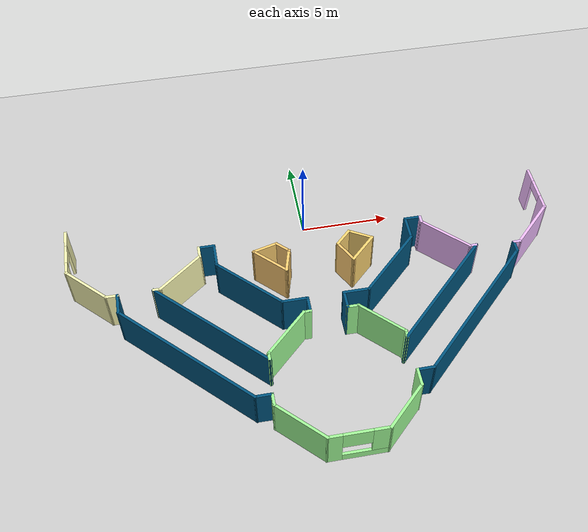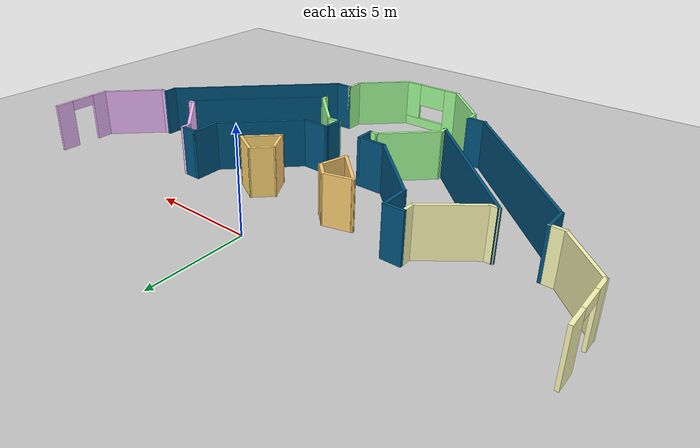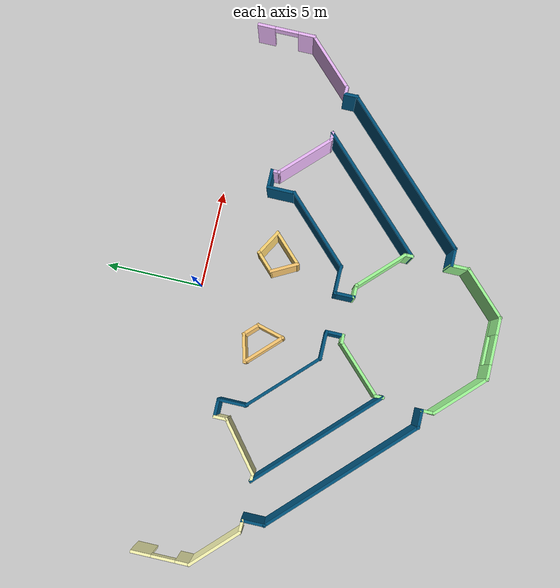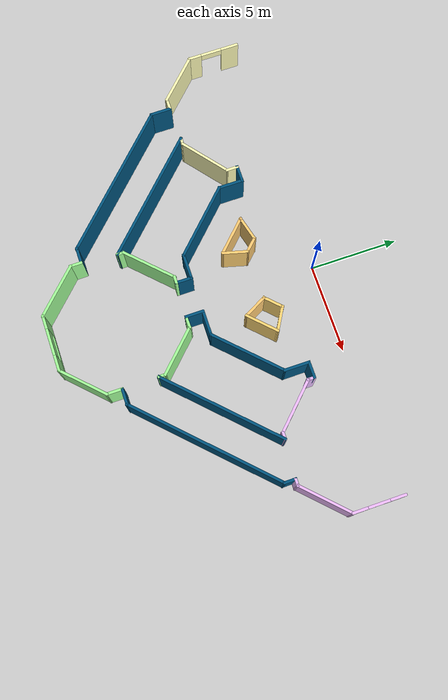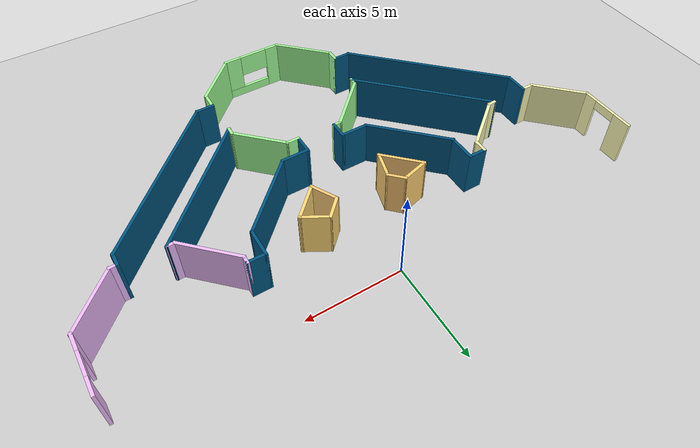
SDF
<sdf version="1.6">
 <world name="default">
  <model name="ground_plane">
   <static>1</static>
   <link name="link">
    <collision name="collision">
     <geometry><plane><normal>0 0 1</normal><size>100 100</size></plane></geometry>
     <surface>
      <contact><collide_bitmask>65535</collide_bitmask></contact>
      <friction><ode><mu>100</mu><mu2>50</mu2></ode></friction>
     </surface>
    </collision>
    <visual name="visual">
     <cast_shadows>0</cast_shadows>
     <geometry><plane><normal>0 0 1</normal><size>100 100</size></plane></geometry>
     <material>
      <script><uri>file://media/materials/scripts/gazebo.material</uri><name>Gazebo/Grey</name></script>
     </material>
    </visual>
   </link>
  </model>
  <model name="building">
   <pose>-0.001846 -1.5065 0 0 -0 0</pose>
   <link name="Wall_10">
    <collision name="Wall_10_Collision">
     <geometry><box><size>1.5 0.15 2.5</size></box></geometry>
     <pose>0 0 1.25 0 -0 0</pose>
    </collision>
    <visual name="Wall_10_Visual">
     <pose>0 0 1.25 0 -0 0</pose>
     <geometry><box><size>1.5 0.15 2.5</size></box></geometry>
     <material>
      <script><uri>file://media/materials/scripts/gazebo.material</uri><name>Gazebo/Grey</name></script>
      <ambient>1 0.819608 0.45098 1</ambient>
     </material>
     <meta><layer>0</layer></meta>
    </visual>
    <pose>-2.66214 -1.49592 0 0 -0 0.261799</pose>
   </link>
   <link name="Wall_11">
    <collision name="Wall_11_Collision">
     <geometry><box><size>1 0.15 2.5</size></box></geometry>
     <pose>0 0 1.25 0 -0 0</pose>
    </collision>
    <visual name="Wall_11_Visual">
     <pose>0 0 1.25 0 -0 0</pose>
     <geometry><box><size>1 0.15 2.5</size></box></geometry>
     <material>
      <script><uri>file://media/materials/scripts/gazebo.material</uri><name>Gazebo/Grey</name></script>
      <ambient>1 0.8 0.454902 1</ambient>
     </material>
     <meta><layer>0</layer></meta>
    </visual>
    <pose>-1.70962 -1.62174 0 0 0 -0.785398</pose>
   </link>
   <link name="Wall_12">
    <collision name="Wall_12_Collision">
     <geometry><box><size>1.5 0.15 2.5</size></box></geometry>
     <pose>0 0 1.25 0 -0 0</pose>
    </collision>
    <visual name="Wall_12_Visual">
     <pose>0 0 1.25 0 -0 0</pose>
     <geometry><box><size>1.5 0.15 2.5</size></box></geometry>
     <material>
      <script><uri>file://media/materials/scripts/gazebo.material</uri><name>Gazebo/Grey</name></script>
      <ambient>1 0.819608 0.45098 1</ambient>
     </material>
     <meta><layer>0</layer></meta>
    </visual>
    <pose>-1.5838 -2.57426 0 0 0 -1.8326</pose>
   </link>
   <link name="Wall_13">
    <collision name="Wall_13_Collision">
     <geometry><box><size>2.35 0.15 2.5</size></box></geometry>
     <pose>0 0 1.25 0 -0 0</pose>
    </collision>
    <visual name="Wall_13_Visual">
     <pose>0 0 1.25 0 -0 0</pose>
     <geometry><box><size>2.35 0.15 2.5</size></box></geometry>
     <material>
      <script><uri>file://media/materials/scripts/gazebo.material</uri><name>Gazebo/Grey</name></script>
      <ambient>1 0.8 0.454902 1</ambient>
     </material>
     <meta><layer>0</layer></meta>
    </visual>
    <pose>-2.53633 -2.44844 0 0 -0 2.35619</pose>
   </link>
   <link name="Wall_15">
    <collision name="Wall_15_Collision">
     <geometry><box><size>1.25 0.15 2.5</size></box></geometry>
     <pose>0 0 1.25 0 -0 0</pose>
    </collision>
    <visual name="Wall_15_Visual">
     <pose>0 0 1.25 0 -0 0</pose>
     <geometry><box><size>1.25 0.15 2.5</size></box></geometry>
     <material>
      <script><uri>file://media/materials/scripts/gazebo.material</uri><name>Gazebo/Grey</name></script>
      <ambient>1 0.847059 0.458824 1</ambient>
     </material>
     <meta><layer>0</layer></meta>
    </visual>
    <pose>1.70963 -1.54407 0 0 -0 0.785398</pose>
   </link>
   <link name="Wall_16">
    <collision name="Wall_16_Collision">
     <geometry><box><size>1.5 0.15 2.5</size></box></geometry>
     <pose>0 0 1.25 0 -0 0</pose>
    </collision>
    <visual name="Wall_16_Visual">
     <pose>0 0 1.25 0 -0 0</pose>
     <geometry><box><size>1.5 0.15 2.5</size></box></geometry>
     <material>
      <script><uri>file://media/materials/scripts/gazebo.material</uri><name>Gazebo/Grey</name></script>
      <ambient>1 0.847059 0.458824 1</ambient>
     </material>
     <meta><layer>0</layer></meta>
    </visual>
    <pose>2.68311 -1.49266 0 0 0 -0.523599</pose>
   </link>
   <link name="Wall_17">
    <collision name="Wall_17_Collision">
     <geometry><box><size>2 0.15 2.5</size></box></geometry>
     <pose>0 0 1.25 0 -0 0</pose>
    </collision>
    <visual name="Wall_17_Visual">
     <pose>0 0 1.25 0 -0 0</pose>
     <geometry><box><size>2 0.15 2.5</size></box></geometry>
     <material>
      <script><uri>file://media/materials/scripts/gazebo.material</uri><name>Gazebo/Grey</name></script>
      <ambient>1 0.847059 0.458824 1</ambient>
     </material>
     <meta><layer>0</layer></meta>
    </visual>
    <pose>2.6136 -2.48423 0 0 0 -2.35619</pose>
   </link>
   <link name="Wall_18">
    <collision name="Wall_18_Collision">
     <geometry><box><size>1.51415 0.15 2.5</size></box></geometry>
     <pose>0 0 1.25 0 -0 0</pose>
    </collision>
    <visual name="Wall_18_Visual">
     <pose>0 0 1.25 0 -0 0</pose>
     <geometry><box><size>1.51415 0.15 2.5</size></box></geometry>
     <material>
      <script><uri>file://media/materials/scripts/gazebo.material</uri><name>Gazebo/Grey</name></script>
      <ambient>1 0.8 0.454902 1</ambient>
     </material>
     <meta><layer>0</layer></meta>
    </visual>
    <pose>1.64013 -2.53564 0 0 -0 2.05814</pose>
   </link>
   <link name="Wall_20">
    <collision name="Wall_20_Collision">
     <geometry><box><size>1.5 0.15 2.5</size></box></geometry>
     <pose>0 0 1.25 0 -0 0</pose>
    </collision>
    <visual name="Wall_20_Visual">
     <pose>0 0 1.25 0 -0 0</pose>
     <geometry><box><size>1.5 0.15 2.5</size></box></geometry>
     <material>
      <script><uri>file://media/materials/scripts/gazebo.material</uri><name>Gazebo/Grey</name></script>
      <ambient>0 0.333333 0.498039 1</ambient>
     </material>
     <meta><layer>0</layer></meta>
    </visual>
    <pose>-5.40602 -1.52769 0 0 0 -1.5708</pose>
   </link>
   <link name="Wall_21">
    <collision name="Wall_21_Collision">
     <geometry><box><size>4.5 0.15 2.5</size></box></geometry>
     <pose>0 0 1.25 0 -0 0</pose>
    </collision>
    <visual name="Wall_21_Visual">
     <pose>0 0 1.25 0 -0 0</pose>
     <geometry><box><size>4.5 0.15 2.5</size></box></geometry>
     <material>
      <script><uri>file://media/materials/scripts/gazebo.material</uri><name>Gazebo/Grey</name></script>
      <ambient>0 0.333333 0.498039 1</ambient>
     </material>
     <meta><layer>0</layer></meta>
    </visual>
    <pose>-3.86807 -3.74065 0 0 0 -0.785398</pose>
   </link>
   <link name="Wall_22">
    <collision name="Wall_22_Collision">
     <geometry><box><size>1.5 0.15 2.5</size></box></geometry>
     <pose>0 0 1.25 0 -0 0</pose>
    </collision>
    <visual name="Wall_22_Visual">
     <pose>0 0 1.25 0 -0 0</pose>
     <geometry><box><size>1.5 0.15 2.5</size></box></geometry>
     <material>
      <script><uri>file://media/materials/scripts/gazebo.material</uri><name>Gazebo/Grey</name></script>
      <ambient>0 0.333333 0.498039 1</ambient>
     </material>
     <meta><layer>0</layer></meta>
    </visual>
    <pose>-1.65511 -5.2786 0 0 -0 0</pose>
   </link>
   <link name="Wall_23">
    <collision name="Wall_23_Collision">
     <geometry><box><size>1 0.15 2.5</size></box></geometry>
     <pose>0 0 1.25 0 -0 0</pose>
    </collision>
    <visual name="Wall_23_Visual">
     <pose>0 0 1.25 0 -0 0</pose>
     <geometry><box><size>1 0.15 2.5</size></box></geometry>
     <material>
      <script><uri>file://media/materials/scripts/gazebo.material</uri><name>Gazebo/Grey</name></script>
      <ambient>0 0.333333 0.498039 1</ambient>
     </material>
     <meta><layer>0</layer></meta>
    </visual>
    <pose>-0.980109 -5.7036 0 0 0 -1.5708</pose>
   </link>
   <link name="Wall_24">
    <collision name="Wall_24_Collision">
     <geometry><box><size>0.5 0.15 2.5</size></box></geometry>
     <pose>0 0 1.25 0 -0 0</pose>
    </collision>
    <visual name="Wall_24_Visual">
     <pose>0 0 1.25 0 -0 0</pose>
     <geometry><box><size>0.5 0.15 2.5</size></box></geometry>
     <material>
      <script><uri>file://media/materials/scripts/gazebo.material</uri><name>Gazebo/Grey</name></script>
      <ambient>0.639216 1 0.6 1</ambient>
     </material>
     <meta><layer>0</layer></meta>
    </visual>
    <pose>-1.15511 -6.1286 0 0 -0 3.14159</pose>
   </link>
   <link name="Wall_26">
    <collision name="Wall_26_Collision">
     <geometry><box><size>1 0.15 2.5</size></box></geometry>
     <pose>0 0 1.25 0 -0 0</pose>
    </collision>
    <visual name="Wall_26_Visual">
     <pose>0 0 1.25 0 -0 0</pose>
     <geometry><box><size>1 0.15 2.5</size></box></geometry>
     <material>
      <script><uri>file://media/materials/scripts/gazebo.material</uri><name>Gazebo/Grey</name></script>
      <ambient>0 0.333333 0.498039 1</ambient>
     </material>
     <meta><layer>0</layer></meta>
    </visual>
    <pose>-5.83102 -0.852688 0 0 -0 3.14159</pose>
   </link>
   <link name="Wall_27">
    <collision name="Wall_27_Collision">
     <geometry><box><size>0.75 0.15 2.5</size></box></geometry>
     <pose>0 0 1.25 0 -0 0</pose>
    </collision>
    <visual name="Wall_27_Visual">
     <pose>0 0 1.25 0 -0 0</pose>
     <geometry><box><size>0.75 0.15 2.5</size></box></geometry>
     <material>
      <script><uri>file://media/materials/scripts/gazebo.material</uri><name>Gazebo/Grey</name></script>
      <ambient>1 0.992157 0.717647 1</ambient>
     </material>
     <meta><layer>0</layer></meta>
    </visual>
    <pose>-6.25602 -1.15269 0 0 0 -1.5708</pose>
   </link>
   <link name="Wall_29">
    <collision name="Wall_29_Collision">
     <geometry><box><size>1.5 0.15 2.5</size></box></geometry>
     <pose>0 0 1.25 0 -0 0</pose>
    </collision>
    <visual name="Wall_29_Visual">
     <pose>0 0 1.25 0 -0 0</pose>
     <geometry><box><size>1.5 0.15 2.5</size></box></geometry>
     <material>
      <script><uri>file://media/materials/scripts/gazebo.material</uri><name>Gazebo/Grey</name></script>
      <ambient>0 0.333333 0.498039 1</ambient>
     </material>
     <meta><layer>0</layer></meta>
    </visual>
    <pose>1.65302 -5.27063 0 0 -0 0</pose>
   </link>
   <link name="Wall_30">
    <collision name="Wall_30_Collision">
     <geometry><box><size>4.5 0.15 2.5</size></box></geometry>
     <pose>0 0 1.25 0 -0 0</pose>
    </collision>
    <visual name="Wall_30_Visual">
     <pose>0 0 1.25 0 -0 0</pose>
     <geometry><box><size>4.5 0.15 2.5</size></box></geometry>
     <material>
      <script><uri>file://media/materials/scripts/gazebo.material</uri><name>Gazebo/Grey</name></script>
      <ambient>0 0.333333 0.498039 1</ambient>
     </material>
     <meta><layer>0</layer></meta>
    </visual>
    <pose>3.86598 -3.73268 0 0 -0 0.785398</pose>
   </link>
   <link name="Wall_31">
    <collision name="Wall_31_Collision">
     <geometry><box><size>1.5 0.15 2.5</size></box></geometry>
     <pose>0 0 1.25 0 -0 0</pose>
    </collision>
    <visual name="Wall_31_Visual">
     <pose>0 0 1.25 0 -0 0</pose>
     <geometry><box><size>1.5 0.15 2.5</size></box></geometry>
     <material>
      <script><uri>file://media/materials/scripts/gazebo.material</uri><name>Gazebo/Grey</name></script>
      <ambient>0 0.333333 0.498039 1</ambient>
     </material>
     <meta><layer>0</layer></meta>
    </visual>
    <pose>5.40394 -1.51972 0 0 -0 1.5708</pose>
   </link>
   <link name="Wall_32">
    <collision name="Wall_32_Collision">
     <geometry><box><size>1 0.15 2.5</size></box></geometry>
     <pose>0 0 1.25 0 -0 0</pose>
    </collision>
    <visual name="Wall_32_Visual">
     <pose>0 0 1.25 0 -0 0</pose>
     <geometry><box><size>1 0.15 2.5</size></box></geometry>
     <material>
      <script><uri>file://media/materials/scripts/gazebo.material</uri><name>Gazebo/Grey</name></script>
      <ambient>0 0.333333 0.498039 1</ambient>
     </material>
     <meta><layer>0</layer></meta>
    </visual>
    <pose>5.82894 -0.84472 0 0 -0 0</pose>
   </link>
   <link name="Wall_33">
    <collision name="Wall_33_Collision">
     <geometry><box><size>0.5 0.15 2.5</size></box></geometry>
     <pose>0 0 1.25 0 -0 0</pose>
    </collision>
    <visual name="Wall_33_Visual">
     <pose>0 0 1.25 0 -0 0</pose>
     <geometry><box><size>0.5 0.15 2.5</size></box></geometry>
     <material>
      <script><uri>file://media/materials/scripts/gazebo.material</uri><name>Gazebo/Grey</name></script>
      <ambient>0.913725 0.737255 1 1</ambient>
     </material>
     <meta><layer>0</layer></meta>
    </visual>
    <pose>6.25394 -1.01972 0 0 0 -1.5708</pose>
   </link>
   <link name="Wall_64">
    <collision name="Wall_64_Collision">
     <geometry><box><size>3.25 0.15 2.5</size></box></geometry>
     <pose>0 0 1.25 0 -0 0</pose>
    </collision>
    <visual name="Wall_64_Visual">
     <pose>0 0 1.25 0 -0 0</pose>
     <geometry><box><size>3.25 0.15 2.5</size></box></geometry>
     <material>
      <script><uri>file://media/materials/scripts/gazebo.material</uri><name>Gazebo/Grey</name></script>
      <ambient>0.94902 0.741176 1 1</ambient>
     </material>
     <meta><layer>0</layer></meta>
    </visual>
    <pose>7.34995 -2.29074 0 0 0 -0.785398</pose>
   </link>
   <link name="Wall_65">
    <collision name="Wall_65_Collision">
     <geometry><box><size>0.5 0.15 2.5</size></box></geometry>
     <pose>0 0 1.25 0 -0 0</pose>
    </collision>
    <visual name="Wall_65_Visual">
     <pose>0 0 1.25 0 -0 0</pose>
     <geometry><box><size>0.5 0.15 2.5</size></box></geometry>
     <material>
      <script><uri>file://media/materials/scripts/gazebo.material</uri><name>Gazebo/Grey</name></script>
      <ambient>0.913725 0.737255 1 1</ambient>
     </material>
     <meta><layer>0</layer></meta>
    </visual>
    <pose>8.62097 -3.38675 0 0 -0 0</pose>
   </link>
   <link name="Wall_66">
    <collision name="Wall_66_Collision">
     <geometry><box><size>7.5 0.15 2.5</size></box></geometry>
     <pose>0 0 1.25 0 -0 0</pose>
    </collision>
    <visual name="Wall_66_Visual">
     <pose>0 0 1.25 0 -0 0</pose>
     <geometry><box><size>7.5 0.15 2.5</size></box></geometry>
     <material>
      <script><uri>file://media/materials/scripts/gazebo.material</uri><name>Gazebo/Grey</name></script>
      <ambient>0 0.333333 0.498039 1</ambient>
     </material>
     <meta><layer>0</layer></meta>
    </visual>
    <pose>6.19735 -5.98537 0 0 0 -2.35619</pose>
   </link>
   <link name="Wall_67">
    <collision name="Wall_67_Collision">
     <geometry><box><size>0.5 0.15 2.5</size></box></geometry>
     <pose>0 0 1.25 0 -0 0</pose>
    </collision>
    <visual name="Wall_67_Visual">
     <pose>0 0 1.25 0 -0 0</pose>
     <geometry><box><size>0.5 0.15 2.5</size></box></geometry>
     <material>
      <script><uri>file://media/materials/scripts/gazebo.material</uri><name>Gazebo/Grey</name></script>
      <ambient>0.639216 1 0.6 1</ambient>
     </material>
     <meta><layer>0</layer></meta>
    </visual>
    <pose>3.59874 -8.40899 0 0 -0 1.5708</pose>
   </link>
   <link name="Wall_68">
    <collision name="Wall_68_Collision">
     <geometry><box><size>3 0.15 2.5</size></box></geometry>
     <pose>0 0 1.25 0 -0 0</pose>
    </collision>
    <visual name="Wall_68_Visual">
     <pose>0 0 1.25 0 -0 0</pose>
     <geometry><box><size>3 0.15 2.5</size></box></geometry>
     <material>
      <script><uri>file://media/materials/scripts/gazebo.material</uri><name>Gazebo/Grey</name></script>
      <ambient>0.639216 1 0.6 1</ambient>
     </material>
     <meta><layer>0</layer></meta>
    </visual>
    <pose>2.59111 -7.22636 0 0 -0 2.35619</pose>
   </link>
   <link name="Wall_69">
    <collision name="Wall_69_Collision">
     <geometry><box><size>0.75 0.15 2.5</size></box></geometry>
     <pose>0 0 1.25 0 -0 0</pose>
    </collision>
    <visual name="Wall_69_Visual">
     <pose>0 0 1.25 0 -0 0</pose>
     <geometry><box><size>0.75 0.15 2.5</size></box></geometry>
     <material>
      <script><uri>file://media/materials/scripts/gazebo.material</uri><name>Gazebo/Grey</name></script>
      <ambient>0.639216 1 0.6 1</ambient>
     </material>
     <meta><layer>0</layer></meta>
    </visual>
    <pose>1.28348 -6.21873 0 0 -0 3.14159</pose>
   </link>
   <link name="Wall_70">
    <collision name="Wall_70_Collision">
     <geometry><box><size>1.09811 0.15 2.5</size></box></geometry>
     <pose>0 0 1.25 0 -0 0</pose>
    </collision>
    <visual name="Wall_70_Visual">
     <pose>0 0 1.25 0 -0 0</pose>
     <geometry><box><size>1.09811 0.15 2.5</size></box></geometry>
     <material>
      <script><uri>file://media/materials/scripts/gazebo.material</uri><name>Gazebo/Grey</name></script>
      <ambient>0 0.333333 0.498039 1</ambient>
     </material>
     <meta><layer>0</layer></meta>
    </visual>
    <pose>0.980752 -5.74468 0 0 -0 1.57655</pose>
   </link>
   <link name="Wall_72">
    <collision name="Wall_72_Collision">
     <geometry><box><size>3.25 0.15 2.5</size></box></geometry>
     <pose>0 0 1.25 0 -0 0</pose>
    </collision>
    <visual name="Wall_72_Visual">
     <pose>0 0 1.25 0 -0 0</pose>
     <geometry><box><size>3.25 0.15 2.5</size></box></geometry>
     <material>
      <script><uri>file://media/materials/scripts/gazebo.material</uri><name>Gazebo/Grey</name></script>
      <ambient>0.639216 1 0.6 1</ambient>
     </material>
     <meta><layer>0</layer></meta>
    </visual>
    <pose>-2.42612 -7.22462 0 0 0 -2.35619</pose>
   </link>
   <link name="Wall_73">
    <collision name="Wall_73_Collision">
     <geometry><box><size>0.5 0.15 2.5</size></box></geometry>
     <pose>0 0 1.25 0 -0 0</pose>
    </collision>
    <visual name="Wall_73_Visual">
     <pose>0 0 1.25 0 -0 0</pose>
     <geometry><box><size>0.5 0.15 2.5</size></box></geometry>
     <material>
      <script><uri>file://media/materials/scripts/gazebo.material</uri><name>Gazebo/Grey</name></script>
      <ambient>0.639216 1 0.6 1</ambient>
     </material>
     <meta><layer>0</layer></meta>
    </visual>
    <pose>-3.52214 -8.49563 0 0 0 -1.5708</pose>
   </link>
   <link name="Wall_74">
    <collision name="Wall_74_Collision">
     <geometry><box><size>7.75 0.15 2.5</size></box></geometry>
     <pose>0 0 1.25 0 -0 0</pose>
    </collision>
    <visual name="Wall_74_Visual">
     <pose>0 0 1.25 0 -0 0</pose>
     <geometry><box><size>7.75 0.15 2.5</size></box></geometry>
     <material>
      <script><uri>file://media/materials/scripts/gazebo.material</uri><name>Gazebo/Grey</name></script>
      <ambient>0 0.333333 0.498039 1</ambient>
     </material>
     <meta><layer>0</layer></meta>
    </visual>
    <pose>-6.20915 -5.98363 0 0 -0 2.35619</pose>
   </link>
   <link name="Wall_75">
    <collision name="Wall_75_Collision">
     <geometry><box><size>0.5 0.15 2.5</size></box></geometry>
     <pose>0 0 1.25 0 -0 0</pose>
    </collision>
    <visual name="Wall_75_Visual">
     <pose>0 0 1.25 0 -0 0</pose>
     <geometry><box><size>0.5 0.15 2.5</size></box></geometry>
     <material>
      <script><uri>file://media/materials/scripts/gazebo.material</uri><name>Gazebo/Grey</name></script>
      <ambient>1 0.992157 0.717647 1</ambient>
     </material>
     <meta><layer>0</layer></meta>
    </visual>
    <pose>-8.72115 -3.29662 0 0 -0 0</pose>
   </link>
   <link name="Wall_76">
    <collision name="Wall_76_Collision">
     <geometry><box><size>3.0902 0.15 2.5</size></box></geometry>
     <pose>0 0 1.25 0 -0 0</pose>
    </collision>
    <visual name="Wall_76_Visual">
     <pose>0 0 1.25 0 -0 0</pose>
     <geometry><box><size>3.0902 0.15 2.5</size></box></geometry>
     <material>
      <script><uri>file://media/materials/scripts/gazebo.material</uri><name>Gazebo/Grey</name></script>
      <ambient>1 0.992157 0.717647 1</ambient>
     </material>
     <meta><layer>0</layer></meta>
    </visual>
    <pose>-7.40109 -2.37466 0 0 -0 0.677883</pose>
   </link>
   <link name="Wall_78">
    <pose>-13.4286 0.125 0 0 0 -1.5708</pose>
    <visual name="Wall_78_Visual_0">
     <pose>-0.988376 0 1.25 0 -0 0</pose>
     <geometry><box><size>1.02325 0.15 2.5</size></box></geometry>
     <material>
      <script><uri>file://media/materials/scripts/gazebo.material</uri><name>Gazebo/Grey</name></script>
      <ambient>1 0.992157 0.717647 1</ambient>
     </material>
     <meta><layer>0</layer></meta>
    </visual>
    <collision name="Wall_78_Collision_0">
     <geometry><box><size>1.02325 0.15 2.5</size></box></geometry>
     <pose>-0.988376 0 1.25 0 -0 0</pose>
    </collision>
    <visual name="Wall_78_Visual_1">
     <pose>1.11162 0 1.25 0 -0 0</pose>
     <geometry><box><size>0.776753 0.15 2.5</size></box></geometry>
     <material>
      <script><uri>file://media/materials/scripts/gazebo.material</uri><name>Gazebo/Grey</name></script>
      <ambient>1 0.992157 0.717647 1</ambient>
     </material>
     <meta><layer>0</layer></meta>
    </visual>
    <collision name="Wall_78_Collision_1">
     <geometry><box><size>0.776753 0.15 2.5</size></box></geometry>
     <pose>1.11162 0 1.25 0 -0 0</pose>
    </collision>
    <visual name="Wall_78_Visual_2">
     <pose>0.123247 0 2.25 0 -0 0</pose>
     <geometry><box><size>1.2 0.15 0.5</size></box></geometry>
     <material>
      <script><uri>file://media/materials/scripts/gazebo.material</uri><name>Gazebo/Grey</name></script>
      <ambient>1 0.992157 0.717647 1</ambient>
     </material>
     <meta><layer>0</layer></meta>
    </visual>
    <collision name="Wall_78_Collision_2">
     <geometry><box><size>1.2 0.15 0.5</size></box></geometry>
     <pose>0.123247 0 2.25 0 -0 0</pose>
    </collision>
   </link>
   <link name="Wall_79">
    <collision name="Wall_79_Collision">
     <geometry><box><size>3 0.15 2.5</size></box></geometry>
     <pose>0 0 1.25 0 -0 0</pose>
    </collision>
    <visual name="Wall_79_Visual">
     <pose>0 0 1.25 0 -0 0</pose>
     <geometry><box><size>3 0.15 2.5</size></box></geometry>
     <material>
      <script><uri>file://media/materials/scripts/gazebo.material</uri><name>Gazebo/Grey</name></script>
      <ambient>1 0.992157 0.717647 1</ambient>
     </material>
     <meta><layer>0</layer></meta>
    </visual>
    <pose>-12.4209 -2.30763 0 0 0 -0.785398</pose>
   </link>
   <link name="Wall_80">
    <collision name="Wall_80_Collision">
     <geometry><box><size>0.75 0.15 2.5</size></box></geometry>
     <pose>0 0 1.25 0 -0 0</pose>
    </collision>
    <visual name="Wall_80_Visual">
     <pose>0 0 1.25 0 -0 0</pose>
     <geometry><box><size>0.75 0.15 2.5</size></box></geometry>
     <material>
      <script><uri>file://media/materials/scripts/gazebo.material</uri><name>Gazebo/Grey</name></script>
      <ambient>1 0.992157 0.717647 1</ambient>
     </material>
     <meta><layer>0</layer></meta>
    </visual>
    <pose>-11.1133 -3.31526 0 0 -0 0</pose>
   </link>
   <link name="Wall_81">
    <collision name="Wall_81_Collision">
     <geometry><box><size>1.25 0.15 2.5</size></box></geometry>
     <pose>0 0 1.25 0 -0 0</pose>
    </collision>
    <visual name="Wall_81_Visual">
     <pose>0 0 1.25 0 -0 0</pose>
     <geometry><box><size>1.25 0.15 2.5</size></box></geometry>
     <material>
      <script><uri>file://media/materials/scripts/gazebo.material</uri><name>Gazebo/Grey</name></script>
      <ambient>0 0.333333 0.498039 1</ambient>
     </material>
     <meta><layer>0</layer></meta>
    </visual>
    <pose>-10.8133 -3.86525 0 0 0 -1.5708</pose>
   </link>
   <link name="Wall_82">
    <collision name="Wall_82_Collision">
     <geometry><box><size>9 0.15 2.5</size></box></geometry>
     <pose>0 0 1.25 0 -0 0</pose>
    </collision>
    <visual name="Wall_82_Visual">
     <pose>0 0 1.25 0 -0 0</pose>
     <geometry><box><size>9 0.15 2.5</size></box></geometry>
     <material>
      <script><uri>file://media/materials/scripts/gazebo.material</uri><name>Gazebo/Grey</name></script>
      <ambient>0 0.333333 0.498039 1</ambient>
     </material>
     <meta><layer>0</layer></meta>
    </visual>
    <pose>-7.68437 -7.5442 0 0 0 -0.785398</pose>
   </link>
   <link name="Wall_83">
    <collision name="Wall_83_Collision">
     <geometry><box><size>1 0.15 2.5</size></box></geometry>
     <pose>0 0 1.25 0 -0 0</pose>
    </collision>
    <visual name="Wall_83_Visual">
     <pose>0 0 1.25 0 -0 0</pose>
     <geometry><box><size>1 0.15 2.5</size></box></geometry>
     <material>
      <script><uri>file://media/materials/scripts/gazebo.material</uri><name>Gazebo/Grey</name></script>
      <ambient>0 0.333333 0.498039 1</ambient>
     </material>
     <meta><layer>0</layer></meta>
    </visual>
    <pose>-4.13042 -10.6731 0 0 -0 0</pose>
   </link>
   <link name="Wall_84">
    <collision name="Wall_84_Collision">
     <geometry><box><size>0.75 0.15 2.5</size></box></geometry>
     <pose>0 0 1.25 0 -0 0</pose>
    </collision>
    <visual name="Wall_84_Visual">
     <pose>0 0 1.25 0 -0 0</pose>
     <geometry><box><size>0.75 0.15 2.5</size></box></geometry>
     <material>
      <script><uri>file://media/materials/scripts/gazebo.material</uri><name>Gazebo/Grey</name></script>
      <ambient>0.639216 1 0.6 1</ambient>
     </material>
     <meta><layer>0</layer></meta>
    </visual>
    <pose>-3.70542 -10.9732 0 0 0 -1.5708</pose>
   </link>
   <link name="Wall_85">
    <collision name="Wall_85_Collision">
     <geometry><box><size>3.25 0.15 2.5</size></box></geometry>
     <pose>0 0 1.25 0 -0 0</pose>
    </collision>
    <visual name="Wall_85_Visual">
     <pose>0 0 1.25 0 -0 0</pose>
     <geometry><box><size>3.25 0.15 2.5</size></box></geometry>
     <material>
      <script><uri>file://media/materials/scripts/gazebo.material</uri><name>Gazebo/Grey</name></script>
      <ambient>0.639216 1 0.6 1</ambient>
     </material>
     <meta><layer>0</layer></meta>
    </visual>
    <pose>-2.6094 -12.3692 0 0 0 -0.785398</pose>
   </link>
   <link name="Wall_86">
    <pose>0.036612 -13.4652 0 0 -0 0</pose>
    <visual name="Wall_86_Visual_0">
     <pose>-1.2173 0 1.25 0 -0 0</pose>
     <geometry><box><size>0.815405 0.15 2.5</size></box></geometry>
     <material>
      <script><uri>file://media/materials/scripts/gazebo.material</uri><name>Gazebo/Grey</name></script>
      <ambient>0.639216 1 0.6 1</ambient>
     </material>
     <meta><layer>0</layer></meta>
    </visual>
    <collision name="Wall_86_Collision_0">
     <geometry><box><size>0.815405 0.15 2.5</size></box></geometry>
     <pose>-1.2173 0 1.25 0 -0 0</pose>
    </collision>
    <visual name="Wall_86_Visual_1">
     <pose>0.407703 0 0.25 0 -0 0</pose>
     <geometry><box><size>2.43459 0.15 0.5</size></box></geometry>
     <material>
      <script><uri>file://media/materials/scripts/gazebo.material</uri><name>Gazebo/Grey</name></script>
      <ambient>0.639216 1 0.6 1</ambient>
     </material>
     <meta><layer>0</layer></meta>
    </visual>
    <collision name="Wall_86_Collision_1">
     <geometry><box><size>2.43459 0.15 0.5</size></box></geometry>
     <pose>0.407703 0 0.25 0 -0 0</pose>
    </collision>
    <visual name="Wall_86_Visual_2">
     <pose>1.1577 0 1.5 0 -0 0</pose>
     <geometry><box><size>0.934595 0.15 2</size></box></geometry>
     <material>
      <script><uri>file://media/materials/scripts/gazebo.material</uri><name>Gazebo/Grey</name></script>
      <ambient>0.639216 1 0.6 1</ambient>
     </material>
     <meta><layer>0</layer></meta>
    </visual>
    <collision name="Wall_86_Collision_2">
     <geometry><box><size>0.934595 0.15 2</size></box></geometry>
     <pose>1.1577 0 1.5 0 -0 0</pose>
    </collision>
    <visual name="Wall_86_Visual_3">
     <pose>-0.059595 0 1.9 0 -0 0</pose>
     <geometry><box><size>1.5 0.15 1.2</size></box></geometry>
     <material>
      <script><uri>file://media/materials/scripts/gazebo.material</uri><name>Gazebo/Grey</name></script>
      <ambient>0.639216 1 0.6 1</ambient>
     </material>
     <meta><layer>0</layer></meta>
    </visual>
    <collision name="Wall_86_Collision_3">
     <geometry><box><size>1.5 0.15 1.2</size></box></geometry>
     <pose>-0.059595 0 1.9 0 -0 0</pose>
    </collision>
   </link>
   <link name="Wall_87">
    <collision name="Wall_87_Collision">
     <geometry><box><size>3 0.15 2.5</size></box></geometry>
     <pose>0 0 1.25 0 -0 0</pose>
    </collision>
    <visual name="Wall_87_Visual">
     <pose>0 0 1.25 0 -0 0</pose>
     <geometry><box><size>3 0.15 2.5</size></box></geometry>
     <material>
      <script><uri>file://media/materials/scripts/gazebo.material</uri><name>Gazebo/Grey</name></script>
      <ambient>0.639216 1 0.6 1</ambient>
     </material>
     <meta><layer>0</layer></meta>
    </visual>
    <pose>2.59424 -12.4576 0 0 -0 0.785398</pose>
   </link>
   <link name="Wall_88">
    <collision name="Wall_88_Collision">
     <geometry><box><size>1 0.15 2.5</size></box></geometry>
     <pose>0 0 1.25 0 -0 0</pose>
    </collision>
    <visual name="Wall_88_Visual">
     <pose>0 0 1.25 0 -0 0</pose>
     <geometry><box><size>1 0.15 2.5</size></box></geometry>
     <material>
      <script><uri>file://media/materials/scripts/gazebo.material</uri><name>Gazebo/Grey</name></script>
      <ambient>0.639216 1 0.6 1</ambient>
     </material>
     <meta><layer>0</layer></meta>
    </visual>
    <pose>3.60187 -11.0249 0 0 -0 1.5708</pose>
   </link>
   <link name="Wall_89">
    <collision name="Wall_89_Collision">
     <geometry><box><size>1 0.15 2.5</size></box></geometry>
     <pose>0 0 1.25 0 -0 0</pose>
    </collision>
    <visual name="Wall_89_Visual">
     <pose>0 0 1.25 0 -0 0</pose>
     <geometry><box><size>1 0.15 2.5</size></box></geometry>
     <material>
      <script><uri>file://media/materials/scripts/gazebo.material</uri><name>Gazebo/Grey</name></script>
      <ambient>0 0.333333 0.498039 1</ambient>
     </material>
     <meta><layer>0</layer></meta>
    </visual>
    <pose>4.02687 -10.5999 0 0 -0 0</pose>
   </link>
   <link name="Wall_90">
    <collision name="Wall_90_Collision">
     <geometry><box><size>9.25 0.15 2.5</size></box></geometry>
     <pose>0 0 1.25 0 -0 0</pose>
    </collision>
    <visual name="Wall_90_Visual">
     <pose>0 0 1.25 0 -0 0</pose>
     <geometry><box><size>9.25 0.15 2.5</size></box></geometry>
     <material>
      <script><uri>file://media/materials/scripts/gazebo.material</uri><name>Gazebo/Grey</name></script>
      <ambient>0 0.333333 0.498039 1</ambient>
     </material>
     <meta><layer>0</layer></meta>
    </visual>
    <pose>7.6692 -7.38259 0 0 -0 0.785398</pose>
   </link>
   <link name="Wall_91">
    <collision name="Wall_91_Collision">
     <geometry><box><size>0.75 0.15 2.5</size></box></geometry>
     <pose>0 0 1.25 0 -0 0</pose>
    </collision>
    <visual name="Wall_91_Visual">
     <pose>0 0 1.25 0 -0 0</pose>
     <geometry><box><size>0.75 0.15 2.5</size></box></geometry>
     <material>
      <script><uri>file://media/materials/scripts/gazebo.material</uri><name>Gazebo/Grey</name></script>
      <ambient>0 0.333333 0.498039 1</ambient>
     </material>
     <meta><layer>0</layer></meta>
    </visual>
    <pose>10.8865 -3.86525 0 0 -0 1.5708</pose>
   </link>
   <link name="Wall_92">
    <collision name="Wall_92_Collision">
     <geometry><box><size>0.5 0.15 2.5</size></box></geometry>
     <pose>0 0 1.25 0 -0 0</pose>
    </collision>
    <visual name="Wall_92_Visual">
     <pose>0 0 1.25 0 -0 0</pose>
     <geometry><box><size>0.5 0.15 2.5</size></box></geometry>
     <material>
      <script><uri>file://media/materials/scripts/gazebo.material</uri><name>Gazebo/Grey</name></script>
      <ambient>0.913725 0.737255 1 1</ambient>
     </material>
     <meta><layer>0</layer></meta>
    </visual>
    <pose>11.0615 -3.56526 0 0 -0 0</pose>
   </link>
   <link name="Wall_93">
    <collision name="Wall_93_Collision">
     <geometry><box><size>3.25 0.15 2.5</size></box></geometry>
     <pose>0 0 1.25 0 -0 0</pose>
    </collision>
    <visual name="Wall_93_Visual">
     <pose>0 0 1.25 0 -0 0</pose>
     <geometry><box><size>3.25 0.15 2.5</size></box></geometry>
     <material>
      <script><uri>file://media/materials/scripts/gazebo.material</uri><name>Gazebo/Grey</name></script>
      <ambient>0.94902 0.741176 1 1</ambient>
     </material>
     <meta><layer>0</layer></meta>
    </visual>
    <pose>12.3326 -2.46924 0 0 -0 0.785398</pose>
   </link>
   <link name="Wall_94">
    <pose>13.4286 0.051777 0 0 -0 1.5708</pose>
    <visual name="Wall_94_Visual_0">
     <pose>-1.05478 0 1.25 0 -0 0</pose>
     <geometry><box><size>0.890431 0.15 2.5</size></box></geometry>
     <material>
      <script><uri>file://media/materials/scripts/gazebo.material</uri><name>Gazebo/Grey</name></script>
      <ambient>0.94902 0.741176 1 1</ambient>
     </material>
     <meta><layer>0</layer></meta>
    </visual>
    <collision name="Wall_94_Collision_0">
     <geometry><box><size>0.890431 0.15 2.5</size></box></geometry>
     <pose>-1.05478 0 1.25 0 -0 0</pose>
    </collision>
    <visual name="Wall_94_Visual_1">
     <pose>1.04522 0 1.25 0 -0 0</pose>
     <geometry><box><size>0.909569 0.15 2.5</size></box></geometry>
     <material>
      <script><uri>file://media/materials/scripts/gazebo.material</uri><name>Gazebo/Grey</name></script>
      <ambient>0.94902 0.741176 1 1</ambient>
     </material>
     <meta><layer>0</layer></meta>
    </visual>
    <collision name="Wall_94_Collision_1">
     <geometry><box><size>0.909569 0.15 2.5</size></box></geometry>
     <pose>1.04522 0 1.25 0 -0 0</pose>
    </collision>
    <visual name="Wall_94_Visual_2">
     <pose>-0.009569 0 2.25 0 -0 0</pose>
     <geometry><box><size>1.2 0.15 0.5</size></box></geometry>
     <material>
      <script><uri>file://media/materials/scripts/gazebo.material</uri><name>Gazebo/Grey</name></script>
      <ambient>0.94902 0.741176 1 1</ambient>
     </material>
     <meta><layer>0</layer></meta>
    </visual>
    <collision name="Wall_94_Collision_2">
     <geometry><box><size>1.2 0.15 0.5</size></box></geometry>
     <pose>-0.009569 0 2.25 0 -0 0</pose>
    </collision>
   </link>
   <static>1</static>
  </model>
 </world>
</sdf>
